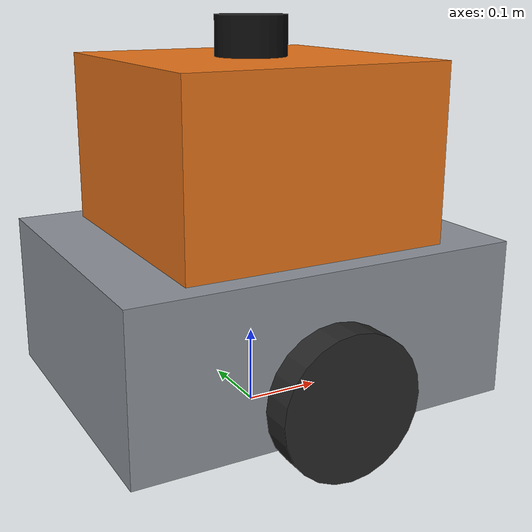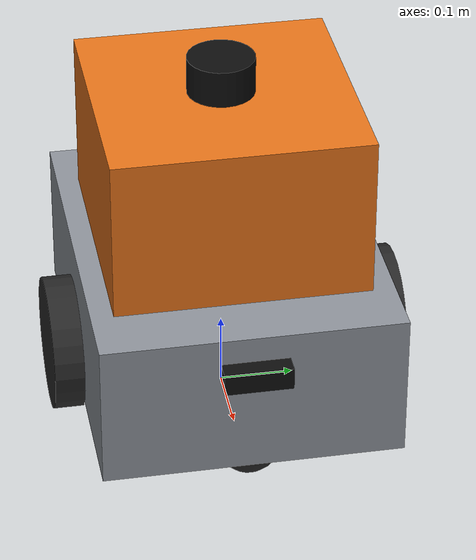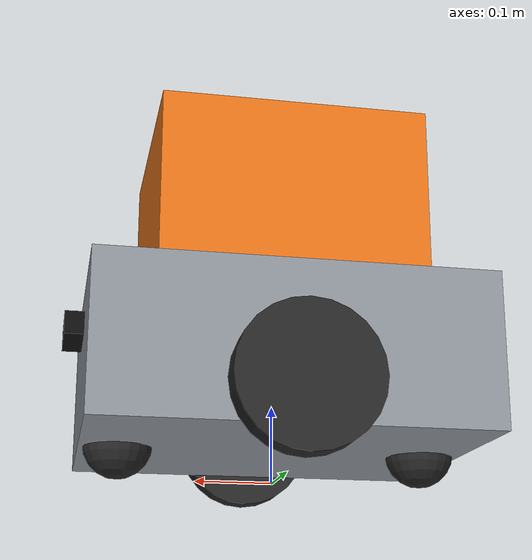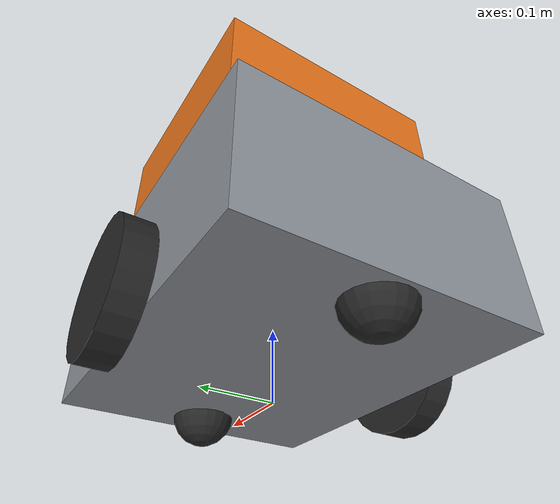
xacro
<?xml version="1.0"?>
<robot name="delivery_bot" xmlns:xacro="http://www.ros.org/wiki/xacro">

  <xacro:include filename="macros.xacro"/>

  <!-- ================= Dimensions & masses ================= -->
  <xacro:property name="chassis_length"   value="0.50"/>
  <xacro:property name="chassis_width"    value="0.40"/>
  <xacro:property name="chassis_height"   value="0.20"/>
  <xacro:property name="chassis_mass"     value="12.0"/>
  <xacro:property name="base_z"           value="0.14"/>  <!-- base_link height above ground -->

  <xacro:property name="wheel_radius"     value="0.09"/>
  <xacro:property name="wheel_width"      value="0.04"/>
  <xacro:property name="wheel_mass"       value="1.0"/>
  <xacro:property name="wheel_separation" value="0.44"/>

  <xacro:property name="caster_radius"    value="0.045"/>
  <xacro:property name="caster_mass"      value="0.4"/>
  <xacro:property name="caster_x"         value="0.20"/>

  <xacro:property name="cargo_size"       value="0.34"/>
  <xacro:property name="cargo_height"     value="0.22"/>
  <xacro:property name="cargo_mass"       value="3.0"/>

  <xacro:property name="lidar_radius"     value="0.045"/>
  <xacro:property name="lidar_height"     value="0.05"/>
  <xacro:property name="lidar_mass"       value="0.2"/>

  <!-- ================= Materials ================= -->
  <material name="grey"><color rgba="0.55 0.57 0.60 1.0"/></material>
  <material name="dark_grey"><color rgba="0.15 0.15 0.15 1.0"/></material>
  <material name="orange"><color rgba="0.90 0.45 0.10 1.0"/></material>
  <material name="black"><color rgba="0.05 0.05 0.05 1.0"/></material>

  <!-- ================= base_footprint & chassis ================= -->
  <link name="base_footprint"/>

  <joint name="base_joint" type="fixed">
    <parent link="base_footprint"/>
    <child link="base_link"/>
    <origin xyz="0 0 ${base_z}" rpy="0 0 0"/>
  </joint>

  <link name="base_link">
    <visual>
      <geometry><box size="${chassis_length} ${chassis_width} ${chassis_height}"/></geometry>
      <material name="grey"/>
    </visual>
    <collision>
      <geometry><box size="${chassis_length} ${chassis_width} ${chassis_height}"/></geometry>
    </collision>
    <xacro:inertial_box mass="${chassis_mass}" x="${chassis_length}" y="${chassis_width}" z="${chassis_height}">
      <origin xyz="0 0 0" rpy="0 0 0"/>
    </xacro:inertial_box>
  </link>

  <!-- ================= Drive wheels ================= -->
  <xacro:macro name="drive_wheel" params="prefix reflect">
    <link name="${prefix}_wheel_link">
      <visual>
        <geometry><cylinder radius="${wheel_radius}" length="${wheel_width}"/></geometry>
        <material name="dark_grey"/>
      </visual>
      <collision>
        <geometry><cylinder radius="${wheel_radius}" length="${wheel_width}"/></geometry>
      </collision>
      <xacro:inertial_cylinder mass="${wheel_mass}" radius="${wheel_radius}" length="${wheel_width}">
        <origin xyz="0 0 0" rpy="0 0 0"/>
      </xacro:inertial_cylinder>
    </link>
    <joint name="${prefix}_wheel_joint" type="continuous">
      <parent link="base_link"/>
      <child link="${prefix}_wheel_link"/>
      <origin xyz="0 ${reflect * wheel_separation / 2.0} ${wheel_radius - base_z}"
              rpy="${-pi/2} 0 0"/>
      <axis xyz="0 0 1"/>
    </joint>
  </xacro:macro>

  <xacro:drive_wheel prefix="left"  reflect="1"/>
  <xacro:drive_wheel prefix="right" reflect="-1"/>

  <!-- ================= Casters (front & rear) ================= -->
  <xacro:macro name="caster" params="prefix x_pos">
    <link name="${prefix}_caster_link">
      <visual>
        <geometry><sphere radius="${caster_radius}"/></geometry>
        <material name="dark_grey"/>
      </visual>
      <collision>
        <geometry><sphere radius="${caster_radius}"/></geometry>
      </collision>
      <xacro:inertial_sphere mass="${caster_mass}" radius="${caster_radius}">
        <origin xyz="0 0 0" rpy="0 0 0"/>
      </xacro:inertial_sphere>
    </link>
    <joint name="${prefix}_caster_joint" type="fixed">
      <parent link="base_link"/>
      <child link="${prefix}_caster_link"/>
      <origin xyz="${x_pos} 0 ${caster_radius - base_z}" rpy="0 0 0"/>
    </joint>
  </xacro:macro>

  <xacro:caster prefix="front" x_pos="${caster_x}"/>
  <xacro:caster prefix="rear"  x_pos="${-caster_x}"/>

  <!-- ================= Cargo box ================= -->
  <link name="cargo_link">
    <visual>
      <geometry><box size="${cargo_size} ${cargo_size} ${cargo_height}"/></geometry>
      <material name="orange"/>
    </visual>
    <collision>
      <geometry><box size="${cargo_size} ${cargo_size} ${cargo_height}"/></geometry>
    </collision>
    <xacro:inertial_box mass="${cargo_mass}" x="${cargo_size}" y="${cargo_size}" z="${cargo_height}">
      <origin xyz="0 0 0" rpy="0 0 0"/>
    </xacro:inertial_box>
  </link>

  <joint name="cargo_joint" type="fixed">
    <parent link="base_link"/>
    <child link="cargo_link"/>
    <!-- sits on the chassis top: chassis top is at +0.10, cargo half-height 0.11 -->
    <origin xyz="0 0 ${chassis_height/2.0 + cargo_height/2.0}" rpy="0 0 0"/>
  </joint>

  <!-- ================= 2D lidar (360 deg, above the cargo) ================= -->
  <link name="lidar_link">
    <visual>
      <geometry><cylinder radius="${lidar_radius}" length="${lidar_height}"/></geometry>
      <material name="black"/>
    </visual>
    <collision>
      <geometry><cylinder radius="${lidar_radius}" length="${lidar_height}"/></geometry>
    </collision>
    <xacro:inertial_cylinder mass="${lidar_mass}" radius="${lidar_radius}" length="${lidar_height}">
      <origin xyz="0 0 0" rpy="0 0 0"/>
    </xacro:inertial_cylinder>
  </link>

  <joint name="lidar_joint" type="fixed">
    <parent link="base_link"/>
    <child link="lidar_link"/>
    <!-- cargo top at +0.32 rel base_link; lidar center 0.025 above that -->
    <origin xyz="0 0 ${chassis_height/2.0 + cargo_height + lidar_height/2.0}" rpy="0 0 0"/>
  </joint>

  <!-- ================= Front RGB-D camera ================= -->
  <link name="camera_link">
    <visual>
      <geometry><box size="0.03 0.09 0.03"/></geometry>
      <material name="black"/>
    </visual>
    <collision>
      <geometry><box size="0.03 0.09 0.03"/></geometry>
    </collision>
    <xacro:inertial_box mass="0.1" x="0.03" y="0.09" z="0.03">
      <origin xyz="0 0 0" rpy="0 0 0"/>
    </xacro:inertial_box>
  </link>

  <joint name="camera_joint" type="fixed">
    <parent link="base_link"/>
    <child link="camera_link"/>
    <origin xyz="${chassis_length/2.0 + 0.01} 0 0.05" rpy="0 0 0"/>
  </joint>

  <!-- Optical frame (z forward, x right) for image consumers like RViz -->
  <link name="camera_link_optical"/>
  <joint name="camera_optical_joint" type="fixed">
    <parent link="camera_link"/>
    <child link="camera_link_optical"/>
    <origin xyz="0 0 0" rpy="${-pi/2} 0 ${-pi/2}"/>
  </joint>

  <!-- ================= IMU ================= -->
  <link name="imu_link">
    <visual>
      <geometry><box size="0.02 0.02 0.02"/></geometry>
      <material name="black"/>
    </visual>
    <xacro:inertial_box mass="0.05" x="0.02" y="0.02" z="0.02">
      <origin xyz="0 0 0" rpy="0 0 0"/>
    </xacro:inertial_box>
  </link>

  <joint name="imu_joint" type="fixed">
    <parent link="base_link"/>
    <child link="imu_link"/>
    <origin xyz="0 0 0.05" rpy="0 0 0"/>
  </joint>

  <!-- ================= Ignition Gazebo plugins & sensors ================= -->
  <xacro:include filename="gazebo.xacro"/>

</robot>

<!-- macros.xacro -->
<robot xmlns:xacro="http://www.ros.org/wiki/xacro">

  <xacro:macro name="inertial_box" params="mass x y z *origin">
    <inertial>
      <xacro:insert_block name="origin"/>
      <mass value="${mass}"/>
      <inertia ixx="${(1.0/12.0) * mass * (y*y + z*z)}" ixy="0.0" ixz="0.0"
               iyy="${(1.0/12.0) * mass * (x*x + z*z)}" iyz="0.0"
               izz="${(1.0/12.0) * mass * (x*x + y*y)}"/>
    </inertial>
  </xacro:macro>

  <xacro:macro name="inertial_cylinder" params="mass radius length *origin">
    <inertial>
      <xacro:insert_block name="origin"/>
      <mass value="${mass}"/>
      <inertia ixx="${(1.0/12.0) * mass * (3.0*radius*radius + length*length)}" ixy="0.0" ixz="0.0"
               iyy="${(1.0/12.0) * mass * (3.0*radius*radius + length*length)}" iyz="0.0"
               izz="${(1.0/2.0) * mass * radius*radius}"/>
    </inertial>
  </xacro:macro>

  <xacro:macro name="inertial_sphere" params="mass radius *origin">
    <inertial>
      <xacro:insert_block name="origin"/>
      <mass value="${mass}"/>
      <inertia ixx="${(2.0/5.0) * mass * radius*radius}" ixy="0.0" ixz="0.0"
               iyy="${(2.0/5.0) * mass * radius*radius}" iyz="0.0"
               izz="${(2.0/5.0) * mass * radius*radius}"/>
    </inertial>
  </xacro:macro>

</robot>
